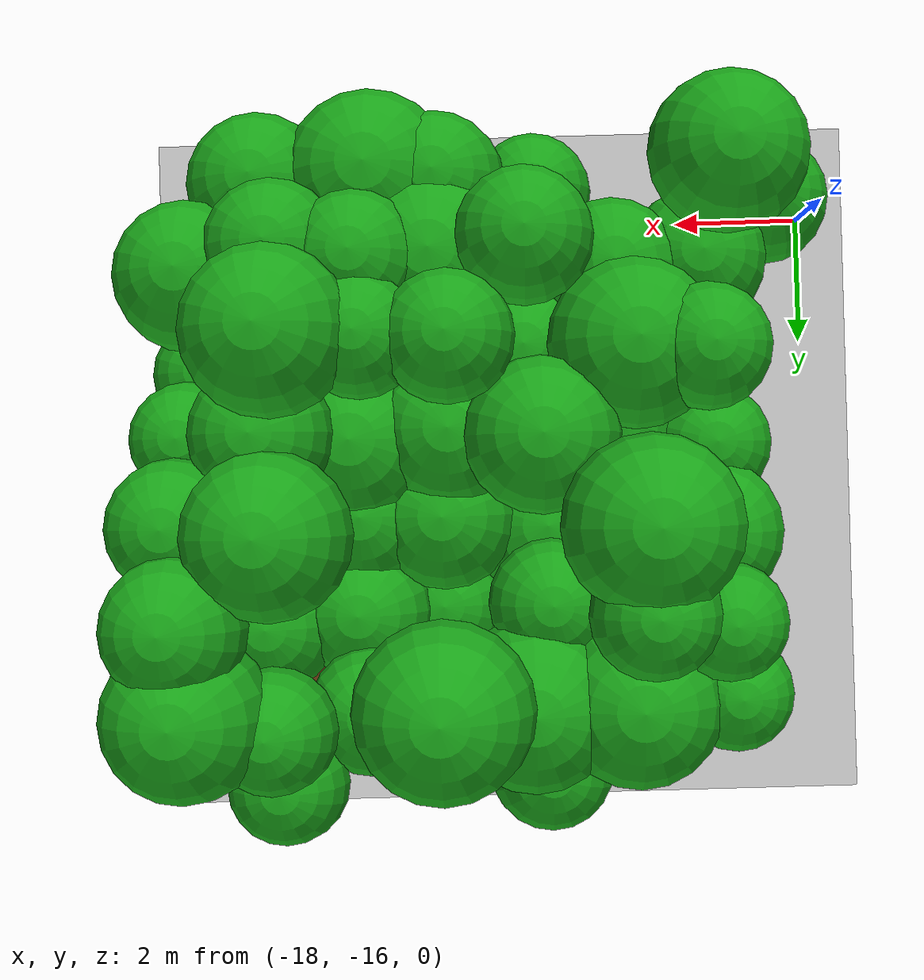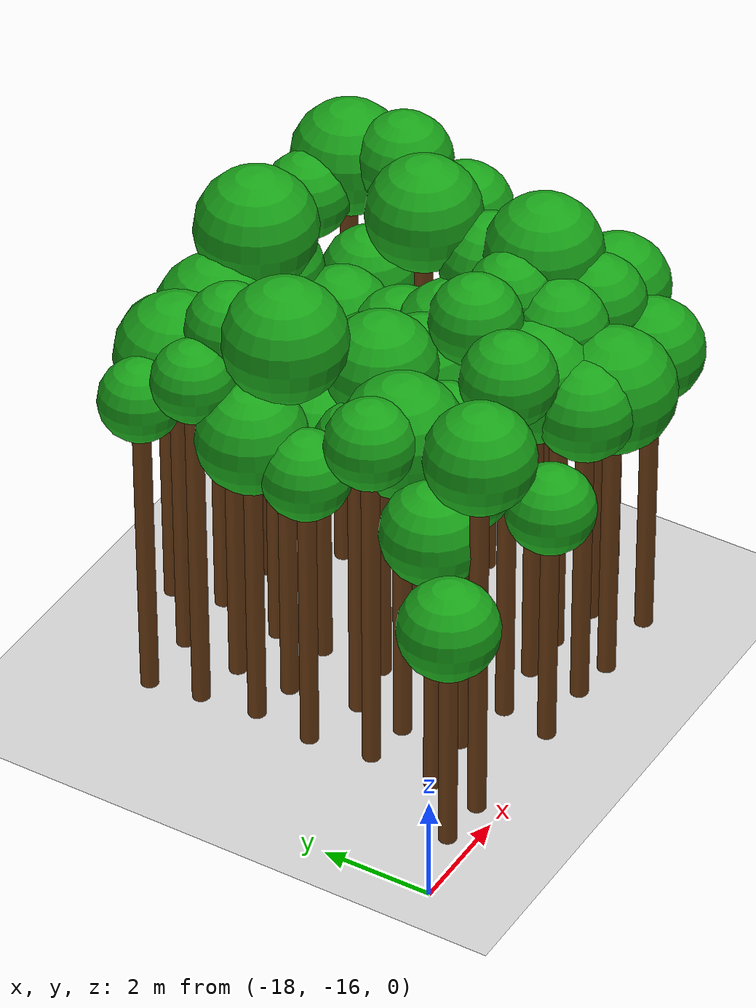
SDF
<sdf version="1.6">
 <world name="forest_world">
  <include><uri>model://sun</uri></include>
  <include><uri>model://ground_plane</uri></include>
  <model name="tree_673_trunk">
   <static>true</static>
   <pose>-16.64 -15.55 2.00 0 0 0</pose>
   <link name="link">
    <collision name="collision">
     <geometry><cylinder><radius>0.16</radius><length>4.01</length></cylinder></geometry>
    </collision>
    <visual name="visual">
     <geometry><cylinder><radius>0.16</radius><length>4.01</length></cylinder></geometry>
     <material><ambient>0.35 0.20 0.05 1</ambient><diffuse>0.45 0.25 0.08 1</diffuse></material>
    </visual>
   </link>
  </model>
  <model name="tree_673_leaf">
   <static>true</static>
   <pose>-16.64 -15.55 4.53 0 0 0</pose>
   <link name="link">
    <collision name="collision"><geometry><sphere><radius>0.87</radius></sphere></geometry></collision>
    <visual name="visual">
     <geometry><sphere><radius>0.87</radius></sphere></geometry>
     <material><ambient>0.05 0.45 0.05 1</ambient><diffuse>0.10 0.65 0.10 1</diffuse></material>
    </visual>
   </link>
  </model>
  <model name="tree_728_trunk">
   <static>true</static>
   <pose>-15.73 -15.58 3.45 0 0 0</pose>
   <link name="link">
    <collision name="collision">
     <geometry><cylinder><radius>0.16</radius><length>6.89</length></cylinder></geometry>
    </collision>
    <visual name="visual">
     <geometry><cylinder><radius>0.16</radius><length>6.89</length></cylinder></geometry>
     <material><ambient>0.35 0.20 0.05 1</ambient><diffuse>0.45 0.25 0.08 1</diffuse></material>
    </visual>
   </link>
  </model>
  <model name="tree_728_leaf">
   <static>true</static>
   <pose>-15.73 -15.58 7.46 0 0 0</pose>
   <link name="link">
    <collision name="collision"><geometry><sphere><radius>0.94</radius></sphere></geometry></collision>
    <visual name="visual">
     <geometry><sphere><radius>0.94</radius></sphere></geometry>
     <material><ambient>0.05 0.45 0.05 1</ambient><diffuse>0.10 0.65 0.10 1</diffuse></material>
    </visual>
   </link>
  </model>
  <model name="tree_729_trunk">
   <static>true</static>
   <pose>-15.59 -14.64 2.44 0 0 0</pose>
   <link name="link">
    <collision name="collision">
     <geometry><cylinder><radius>0.16</radius><length>4.89</length></cylinder></geometry>
    </collision>
    <visual name="visual">
     <geometry><cylinder><radius>0.16</radius><length>4.89</length></cylinder></geometry>
     <material><ambient>0.35 0.20 0.05 1</ambient><diffuse>0.45 0.25 0.08 1</diffuse></material>
    </visual>
   </link>
  </model>
  <model name="tree_729_leaf">
   <static>true</static>
   <pose>-15.59 -14.64 5.43 0 0 0</pose>
   <link name="link">
    <collision name="collision"><geometry><sphere><radius>0.91</radius></sphere></geometry></collision>
    <visual name="visual">
     <geometry><sphere><radius>0.91</radius></sphere></geometry>
     <material><ambient>0.05 0.45 0.05 1</ambient><diffuse>0.10 0.65 0.10 1</diffuse></material>
    </visual>
   </link>
  </model>
  <model name="tree_730_trunk">
   <static>true</static>
   <pose>-15.54 -13.41 3.14 0 0 0</pose>
   <link name="link">
    <collision name="collision">
     <geometry><cylinder><radius>0.16</radius><length>6.27</length></cylinder></geometry>
    </collision>
    <visual name="visual">
     <geometry><cylinder><radius>0.16</radius><length>6.27</length></cylinder></geometry>
     <material><ambient>0.35 0.20 0.05 1</ambient><diffuse>0.45 0.25 0.08 1</diffuse></material>
    </visual>
   </link>
  </model>
  <model name="tree_730_leaf">
   <static>true</static>
   <pose>-15.54 -13.41 6.74 0 0 0</pose>
   <link name="link">
    <collision name="collision"><geometry><sphere><radius>0.78</radius></sphere></geometry></collision>
    <visual name="visual">
     <geometry><sphere><radius>0.78</radius></sphere></geometry>
     <material><ambient>0.05 0.45 0.05 1</ambient><diffuse>0.10 0.65 0.10 1</diffuse></material>
    </visual>
   </link>
  </model>
  <model name="tree_731_trunk">
   <static>true</static>
   <pose>-15.67 -12.26 2.62 0 0 0</pose>
   <link name="link">
    <collision name="collision">
     <geometry><cylinder><radius>0.16</radius><length>5.25</length></cylinder></geometry>
    </collision>
    <visual name="visual">
     <geometry><cylinder><radius>0.16</radius><length>5.25</length></cylinder></geometry>
     <material><ambient>0.35 0.20 0.05 1</ambient><diffuse>0.45 0.25 0.08 1</diffuse></material>
    </visual>
   </link>
  </model>
  <model name="tree_731_leaf">
   <static>true</static>
   <pose>-15.67 -12.26 5.72 0 0 0</pose>
   <link name="link">
    <collision name="collision"><geometry><sphere><radius>0.78</radius></sphere></geometry></collision>
    <visual name="visual">
     <geometry><sphere><radius>0.78</radius></sphere></geometry>
     <material><ambient>0.05 0.45 0.05 1</ambient><diffuse>0.10 0.65 0.10 1</diffuse></material>
    </visual>
   </link>
  </model>
  <model name="tree_732_trunk">
   <static>true</static>
   <pose>-15.57 -11.15 2.70 0 0 0</pose>
   <link name="link">
    <collision name="collision">
     <geometry><cylinder><radius>0.16</radius><length>5.40</length></cylinder></geometry>
    </collision>
    <visual name="visual">
     <geometry><cylinder><radius>0.16</radius><length>5.40</length></cylinder></geometry>
     <material><ambient>0.35 0.20 0.05 1</ambient><diffuse>0.45 0.25 0.08 1</diffuse></material>
    </visual>
   </link>
  </model>
  <model name="tree_732_leaf">
   <static>true</static>
   <pose>-15.57 -11.15 5.98 0 0 0</pose>
   <link name="link">
    <collision name="collision"><geometry><sphere><radius>0.96</radius></sphere></geometry></collision>
    <visual name="visual">
     <geometry><sphere><radius>0.96</radius></sphere></geometry>
     <material><ambient>0.05 0.45 0.05 1</ambient><diffuse>0.10 0.65 0.10 1</diffuse></material>
    </visual>
   </link>
  </model>
  <model name="tree_733_trunk">
   <static>true</static>
   <pose>-15.69 -10.10 3.20 0 0 0</pose>
   <link name="link">
    <collision name="collision">
     <geometry><cylinder><radius>0.16</radius><length>6.39</length></cylinder></geometry>
    </collision>
    <visual name="visual">
     <geometry><cylinder><radius>0.16</radius><length>6.39</length></cylinder></geometry>
     <material><ambient>0.35 0.20 0.05 1</ambient><diffuse>0.45 0.25 0.08 1</diffuse></material>
    </visual>
   </link>
  </model>
  <model name="tree_733_leaf">
   <static>true</static>
   <pose>-15.69 -10.10 6.82 0 0 0</pose>
   <link name="link">
    <collision name="collision"><geometry><sphere><radius>0.72</radius></sphere></geometry></collision>
    <visual name="visual">
     <geometry><sphere><radius>0.72</radius></sphere></geometry>
     <material><ambient>0.05 0.45 0.05 1</ambient><diffuse>0.10 0.65 0.10 1</diffuse></material>
    </visual>
   </link>
  </model>
  <model name="tree_734_trunk">
   <static>true</static>
   <pose>-15.84 -9.15 2.86 0 0 0</pose>
   <link name="link">
    <collision name="collision">
     <geometry><cylinder><radius>0.16</radius><length>5.71</length></cylinder></geometry>
    </collision>
    <visual name="visual">
     <geometry><cylinder><radius>0.16</radius><length>5.71</length></cylinder></geometry>
     <material><ambient>0.35 0.20 0.05 1</ambient><diffuse>0.45 0.25 0.08 1</diffuse></material>
    </visual>
   </link>
  </model>
  <model name="tree_734_leaf">
   <static>true</static>
   <pose>-15.84 -9.15 6.15 0 0 0</pose>
   <link name="link">
    <collision name="collision"><geometry><sphere><radius>0.73</radius></sphere></geometry></collision>
    <visual name="visual">
     <geometry><sphere><radius>0.73</radius></sphere></geometry>
     <material><ambient>0.05 0.45 0.05 1</ambient><diffuse>0.10 0.65 0.10 1</diffuse></material>
    </visual>
   </link>
  </model>
  <model name="tree_784_trunk">
   <static>true</static>
   <pose>-14.47 -14.51 2.58 0 0 0</pose>
   <link name="link">
    <collision name="collision">
     <geometry><cylinder><radius>0.16</radius><length>5.16</length></cylinder></geometry>
    </collision>
    <visual name="visual">
     <geometry><cylinder><radius>0.16</radius><length>5.16</length></cylinder></geometry>
     <material><ambient>0.35 0.20 0.05 1</ambient><diffuse>0.45 0.25 0.08 1</diffuse></material>
    </visual>
   </link>
  </model>
  <model name="tree_784_leaf">
   <static>true</static>
   <pose>-14.47 -14.51 5.71 0 0 0</pose>
   <link name="link">
    <collision name="collision"><geometry><sphere><radius>0.90</radius></sphere></geometry></collision>
    <visual name="visual">
     <geometry><sphere><radius>0.90</radius></sphere></geometry>
     <material><ambient>0.05 0.45 0.05 1</ambient><diffuse>0.10 0.65 0.10 1</diffuse></material>
    </visual>
   </link>
  </model>
  <model name="tree_785_trunk">
   <static>true</static>
   <pose>-14.68 -13.50 2.87 0 0 0</pose>
   <link name="link">
    <collision name="collision">
     <geometry><cylinder><radius>0.16</radius><length>5.73</length></cylinder></geometry>
    </collision>
    <visual name="visual">
     <geometry><cylinder><radius>0.16</radius><length>5.73</length></cylinder></geometry>
     <material><ambient>0.35 0.20 0.05 1</ambient><diffuse>0.45 0.25 0.08 1</diffuse></material>
    </visual>
   </link>
  </model>
  <model name="tree_785_leaf">
   <static>true</static>
   <pose>-14.68 -13.50 6.38 0 0 0</pose>
   <link name="link">
    <collision name="collision"><geometry><sphere><radius>1.07</radius></sphere></geometry></collision>
    <visual name="visual">
     <geometry><sphere><radius>1.07</radius></sphere></geometry>
     <material><ambient>0.05 0.45 0.05 1</ambient><diffuse>0.10 0.65 0.10 1</diffuse></material>
    </visual>
   </link>
  </model>
  <model name="tree_786_trunk">
   <static>true</static>
   <pose>-14.54 -12.54 2.64 0 0 0</pose>
   <link name="link">
    <collision name="collision">
     <geometry><cylinder><radius>0.16</radius><length>5.28</length></cylinder></geometry>
    </collision>
    <visual name="visual">
     <geometry><cylinder><radius>0.16</radius><length>5.28</length></cylinder></geometry>
     <material><ambient>0.35 0.20 0.05 1</ambient><diffuse>0.45 0.25 0.08 1</diffuse></material>
    </visual>
   </link>
  </model>
  <model name="tree_786_leaf">
   <static>true</static>
   <pose>-14.54 -12.54 5.72 0 0 0</pose>
   <link name="link">
    <collision name="collision"><geometry><sphere><radius>0.73</radius></sphere></geometry></collision>
    <visual name="visual">
     <geometry><sphere><radius>0.73</radius></sphere></geometry>
     <material><ambient>0.05 0.45 0.05 1</ambient><diffuse>0.10 0.65 0.10 1</diffuse></material>
    </visual>
   </link>
  </model>
  <model name="tree_787_trunk">
   <static>true</static>
   <pose>-14.75 -11.30 3.44 0 0 0</pose>
   <link name="link">
    <collision name="collision">
     <geometry><cylinder><radius>0.16</radius><length>6.88</length></cylinder></geometry>
    </collision>
    <visual name="visual">
     <geometry><cylinder><radius>0.16</radius><length>6.88</length></cylinder></geometry>
     <material><ambient>0.35 0.20 0.05 1</ambient><diffuse>0.45 0.25 0.08 1</diffuse></material>
    </visual>
   </link>
  </model>
  <model name="tree_787_leaf">
   <static>true</static>
   <pose>-14.75 -11.30 7.52 0 0 0</pose>
   <link name="link">
    <collision name="collision"><geometry><sphere><radius>1.08</radius></sphere></geometry></collision>
    <visual name="visual">
     <geometry><sphere><radius>1.08</radius></sphere></geometry>
     <material><ambient>0.05 0.45 0.05 1</ambient><diffuse>0.10 0.65 0.10 1</diffuse></material>
    </visual>
   </link>
  </model>
  <model name="tree_788_trunk">
   <static>true</static>
   <pose>-14.76 -10.26 3.45 0 0 0</pose>
   <link name="link">
    <collision name="collision">
     <geometry><cylinder><radius>0.16</radius><length>6.90</length></cylinder></geometry>
    </collision>
    <visual name="visual">
     <geometry><cylinder><radius>0.16</radius><length>6.90</length></cylinder></geometry>
     <material><ambient>0.35 0.20 0.05 1</ambient><diffuse>0.45 0.25 0.08 1</diffuse></material>
    </visual>
   </link>
  </model>
  <model name="tree_788_leaf">
   <static>true</static>
   <pose>-14.76 -10.26 7.37 0 0 0</pose>
   <link name="link">
    <collision name="collision"><geometry><sphere><radius>0.78</radius></sphere></geometry></collision>
    <visual name="visual">
     <geometry><sphere><radius>0.78</radius></sphere></geometry>
     <material><ambient>0.05 0.45 0.05 1</ambient><diffuse>0.10 0.65 0.10 1</diffuse></material>
    </visual>
   </link>
  </model>
  <model name="tree_789_trunk">
   <static>true</static>
   <pose>-14.62 -9.10 2.81 0 0 0</pose>
   <link name="link">
    <collision name="collision">
     <geometry><cylinder><radius>0.16</radius><length>5.61</length></cylinder></geometry>
    </collision>
    <visual name="visual">
     <geometry><cylinder><radius>0.16</radius><length>5.61</length></cylinder></geometry>
     <material><ambient>0.35 0.20 0.05 1</ambient><diffuse>0.45 0.25 0.08 1</diffuse></material>
    </visual>
   </link>
  </model>
  <model name="tree_789_leaf">
   <static>true</static>
   <pose>-14.62 -9.10 6.27 0 0 0</pose>
   <link name="link">
    <collision name="collision"><geometry><sphere><radius>1.09</radius></sphere></geometry></collision>
    <visual name="visual">
     <geometry><sphere><radius>1.09</radius></sphere></geometry>
     <material><ambient>0.05 0.45 0.05 1</ambient><diffuse>0.10 0.65 0.10 1</diffuse></material>
    </visual>
   </link>
  </model>
  <model name="tree_838_trunk">
   <static>true</static>
   <pose>-13.51 -15.65 2.22 0 0 0</pose>
   <link name="link">
    <collision name="collision">
     <geometry><cylinder><radius>0.16</radius><length>4.44</length></cylinder></geometry>
    </collision>
    <visual name="visual">
     <geometry><cylinder><radius>0.16</radius><length>4.44</length></cylinder></geometry>
     <material><ambient>0.35 0.20 0.05 1</ambient><diffuse>0.45 0.25 0.08 1</diffuse></material>
    </visual>
   </link>
  </model>
  <model name="tree_838_leaf">
   <static>true</static>
   <pose>-13.51 -15.65 4.91 0 0 0</pose>
   <link name="link">
    <collision name="collision"><geometry><sphere><radius>0.78</radius></sphere></geometry></collision>
    <visual name="visual">
     <geometry><sphere><radius>0.78</radius></sphere></geometry>
     <material><ambient>0.05 0.45 0.05 1</ambient><diffuse>0.10 0.65 0.10 1</diffuse></material>
    </visual>
   </link>
  </model>
  <model name="tree_839_trunk">
   <static>true</static>
   <pose>-13.35 -14.73 3.32 0 0 0</pose>
   <link name="link">
    <collision name="collision">
     <geometry><cylinder><radius>0.16</radius><length>6.64</length></cylinder></geometry>
    </collision>
    <visual name="visual">
     <geometry><cylinder><radius>0.16</radius><length>6.64</length></cylinder></geometry>
     <material><ambient>0.35 0.20 0.05 1</ambient><diffuse>0.45 0.25 0.08 1</diffuse></material>
    </visual>
   </link>
  </model>
  <model name="tree_839_leaf">
   <static>true</static>
   <pose>-13.35 -14.73 7.13 0 0 0</pose>
   <link name="link">
    <collision name="collision"><geometry><sphere><radius>0.83</radius></sphere></geometry></collision>
    <visual name="visual">
     <geometry><sphere><radius>0.83</radius></sphere></geometry>
     <material><ambient>0.05 0.45 0.05 1</ambient><diffuse>0.10 0.65 0.10 1</diffuse></material>
    </visual>
   </link>
  </model>
  <model name="tree_840_trunk">
   <static>true</static>
   <pose>-13.33 -13.53 2.53 0 0 0</pose>
   <link name="link">
    <collision name="collision">
     <geometry><cylinder><radius>0.16</radius><length>5.07</length></cylinder></geometry>
    </collision>
    <visual name="visual">
     <geometry><cylinder><radius>0.16</radius><length>5.07</length></cylinder></geometry>
     <material><ambient>0.35 0.20 0.05 1</ambient><diffuse>0.45 0.25 0.08 1</diffuse></material>
    </visual>
   </link>
  </model>
  <model name="tree_840_leaf">
   <static>true</static>
   <pose>-13.33 -13.53 5.57 0 0 0</pose>
   <link name="link">
    <collision name="collision"><geometry><sphere><radius>0.84</radius></sphere></geometry></collision>
    <visual name="visual">
     <geometry><sphere><radius>0.84</radius></sphere></geometry>
     <material><ambient>0.05 0.45 0.05 1</ambient><diffuse>0.10 0.65 0.10 1</diffuse></material>
    </visual>
   </link>
  </model>
  <model name="tree_841_trunk">
   <static>true</static>
   <pose>-13.52 -12.40 3.01 0 0 0</pose>
   <link name="link">
    <collision name="collision">
     <geometry><cylinder><radius>0.16</radius><length>6.01</length></cylinder></geometry>
    </collision>
    <visual name="visual">
     <geometry><cylinder><radius>0.16</radius><length>6.01</length></cylinder></geometry>
     <material><ambient>0.35 0.20 0.05 1</ambient><diffuse>0.45 0.25 0.08 1</diffuse></material>
    </visual>
   </link>
  </model>
  <model name="tree_841_leaf">
   <static>true</static>
   <pose>-13.52 -12.40 6.59 0 0 0</pose>
   <link name="link">
    <collision name="collision"><geometry><sphere><radius>0.97</radius></sphere></geometry></collision>
    <visual name="visual">
     <geometry><sphere><radius>0.97</radius></sphere></geometry>
     <material><ambient>0.05 0.45 0.05 1</ambient><diffuse>0.10 0.65 0.10 1</diffuse></material>
    </visual>
   </link>
  </model>
  <model name="tree_842_trunk">
   <static>true</static>
   <pose>-13.59 -11.26 2.08 0 0 0</pose>
   <link name="link">
    <collision name="collision">
     <geometry><cylinder><radius>0.16</radius><length>4.16</length></cylinder></geometry>
    </collision>
    <visual name="visual">
     <geometry><cylinder><radius>0.16</radius><length>4.16</length></cylinder></geometry>
     <material><ambient>0.35 0.20 0.05 1</ambient><diffuse>0.45 0.25 0.08 1</diffuse></material>
    </visual>
   </link>
  </model>
  <model name="tree_842_leaf">
   <static>true</static>
   <pose>-13.59 -11.26 4.79 0 0 0</pose>
   <link name="link">
    <collision name="collision"><geometry><sphere><radius>1.06</radius></sphere></geometry></collision>
    <visual name="visual">
     <geometry><sphere><radius>1.06</radius></sphere></geometry>
     <material><ambient>0.05 0.45 0.05 1</ambient><diffuse>0.10 0.65 0.10 1</diffuse></material>
    </visual>
   </link>
  </model>
  <model name="tree_843_trunk">
   <static>true</static>
   <pose>-13.60 -10.34 2.86 0 0 0</pose>
   <link name="link">
    <collision name="collision">
     <geometry><cylinder><radius>0.16</radius><length>5.72</length></cylinder></geometry>
    </collision>
    <visual name="visual">
     <geometry><cylinder><radius>0.16</radius><length>5.72</length></cylinder></geometry>
     <material><ambient>0.35 0.20 0.05 1</ambient><diffuse>0.45 0.25 0.08 1</diffuse></material>
    </visual>
   </link>
  </model>
  <model name="tree_843_leaf">
   <static>true</static>
   <pose>-13.60 -10.34 6.20 0 0 0</pose>
   <link name="link">
    <collision name="collision"><geometry><sphere><radius>0.79</radius></sphere></geometry></collision>
    <visual name="visual">
     <geometry><sphere><radius>0.79</radius></sphere></geometry>
     <material><ambient>0.05 0.45 0.05 1</ambient><diffuse>0.10 0.65 0.10 1</diffuse></material>
    </visual>
   </link>
  </model>
  <model name="tree_844_trunk">
   <static>true</static>
   <pose>-13.35 -9.08 2.80 0 0 0</pose>
   <link name="link">
    <collision name="collision">
     <geometry><cylinder><radius>0.16</radius><length>5.61</length></cylinder></geometry>
    </collision>
    <visual name="visual">
     <geometry><cylinder><radius>0.16</radius><length>5.61</length></cylinder></geometry>
     <material><ambient>0.35 0.20 0.05 1</ambient><diffuse>0.45 0.25 0.08 1</diffuse></material>
    </visual>
   </link>
  </model>
  <model name="tree_844_leaf">
   <static>true</static>
   <pose>-13.35 -9.08 6.26 0 0 0</pose>
   <link name="link">
    <collision name="collision"><geometry><sphere><radius>1.09</radius></sphere></geometry></collision>
    <visual name="visual">
     <geometry><sphere><radius>1.09</radius></sphere></geometry>
     <material><ambient>0.05 0.45 0.05 1</ambient><diffuse>0.10 0.65 0.10 1</diffuse></material>
    </visual>
   </link>
  </model>
  <model name="tree_845_trunk">
   <static>true</static>
   <pose>-13.56 -8.17 2.51 0 0 0</pose>
   <link name="link">
    <collision name="collision">
     <geometry><cylinder><radius>0.16</radius><length>5.03</length></cylinder></geometry>
    </collision>
    <visual name="visual">
     <geometry><cylinder><radius>0.16</radius><length>5.03</length></cylinder></geometry>
     <material><ambient>0.35 0.20 0.05 1</ambient><diffuse>0.45 0.25 0.08 1</diffuse></material>
    </visual>
   </link>
  </model>
  <model name="tree_845_leaf">
   <static>true</static>
   <pose>-13.56 -8.17 5.51 0 0 0</pose>
   <link name="link">
    <collision name="collision"><geometry><sphere><radius>0.81</radius></sphere></geometry></collision>
    <visual name="visual">
     <geometry><sphere><radius>0.81</radius></sphere></geometry>
     <material><ambient>0.05 0.45 0.05 1</ambient><diffuse>0.10 0.65 0.10 1</diffuse></material>
    </visual>
   </link>
  </model>
  <model name="tree_893_trunk">
   <static>true</static>
   <pose>-12.28 -15.59 2.80 0 0 0</pose>
   <link name="link">
    <collision name="collision">
     <geometry><cylinder><radius>0.16</radius><length>5.59</length></cylinder></geometry>
    </collision>
    <visual name="visual">
     <geometry><cylinder><radius>0.16</radius><length>5.59</length></cylinder></geometry>
     <material><ambient>0.35 0.20 0.05 1</ambient><diffuse>0.45 0.25 0.08 1</diffuse></material>
    </visual>
   </link>
  </model>
  <model name="tree_893_leaf">
   <static>true</static>
   <pose>-12.28 -15.59 6.12 0 0 0</pose>
   <link name="link">
    <collision name="collision"><geometry><sphere><radius>0.87</radius></sphere></geometry></collision>
    <visual name="visual">
     <geometry><sphere><radius>0.87</radius></sphere></geometry>
     <material><ambient>0.05 0.45 0.05 1</ambient><diffuse>0.10 0.65 0.10 1</diffuse></material>
    </visual>
   </link>
  </model>
  <model name="tree_894_trunk">
   <static>true</static>
   <pose>-12.23 -14.60 2.83 0 0 0</pose>
   <link name="link">
    <collision name="collision">
     <geometry><cylinder><radius>0.16</radius><length>5.67</length></cylinder></geometry>
    </collision>
    <visual name="visual">
     <geometry><cylinder><radius>0.16</radius><length>5.67</length></cylinder></geometry>
     <material><ambient>0.35 0.20 0.05 1</ambient><diffuse>0.45 0.25 0.08 1</diffuse></material>
    </visual>
   </link>
  </model>
  <model name="tree_894_leaf">
   <static>true</static>
   <pose>-12.23 -14.60 6.30 0 0 0</pose>
   <link name="link">
    <collision name="collision"><geometry><sphere><radius>1.05</radius></sphere></geometry></collision>
    <visual name="visual">
     <geometry><sphere><radius>1.05</radius></sphere></geometry>
     <material><ambient>0.05 0.45 0.05 1</ambient><diffuse>0.10 0.65 0.10 1</diffuse></material>
    </visual>
   </link>
  </model>
  <model name="tree_895_trunk">
   <static>true</static>
   <pose>-12.42 -13.56 3.41 0 0 0</pose>
   <link name="link">
    <collision name="collision">
     <geometry><cylinder><radius>0.16</radius><length>6.81</length></cylinder></geometry>
    </collision>
    <visual name="visual">
     <geometry><cylinder><radius>0.16</radius><length>6.81</length></cylinder></geometry>
     <material><ambient>0.35 0.20 0.05 1</ambient><diffuse>0.45 0.25 0.08 1</diffuse></material>
    </visual>
   </link>
  </model>
  <model name="tree_895_leaf">
   <static>true</static>
   <pose>-12.42 -13.56 7.29 0 0 0</pose>
   <link name="link">
    <collision name="collision"><geometry><sphere><radius>0.80</radius></sphere></geometry></collision>
    <visual name="visual">
     <geometry><sphere><radius>0.80</radius></sphere></geometry>
     <material><ambient>0.05 0.45 0.05 1</ambient><diffuse>0.10 0.65 0.10 1</diffuse></material>
    </visual>
   </link>
  </model>
  <model name="tree_896_trunk">
   <static>true</static>
   <pose>-12.38 -12.51 2.61 0 0 0</pose>
   <link name="link">
    <collision name="collision">
     <geometry><cylinder><radius>0.16</radius><length>5.22</length></cylinder></geometry>
    </collision>
    <visual name="visual">
     <geometry><cylinder><radius>0.16</radius><length>5.22</length></cylinder></geometry>
     <material><ambient>0.35 0.20 0.05 1</ambient><diffuse>0.45 0.25 0.08 1</diffuse></material>
    </visual>
   </link>
  </model>
  <model name="tree_896_leaf">
   <static>true</static>
   <pose>-12.38 -12.51 5.81 0 0 0</pose>
   <link name="link">
    <collision name="collision"><geometry><sphere><radius>0.97</radius></sphere></geometry></collision>
    <visual name="visual">
     <geometry><sphere><radius>0.97</radius></sphere></geometry>
     <material><ambient>0.05 0.45 0.05 1</ambient><diffuse>0.10 0.65 0.10 1</diffuse></material>
    </visual>
   </link>
  </model>
  <model name="tree_897_trunk">
   <static>true</static>
   <pose>-12.26 -11.42 2.38 0 0 0</pose>
   <link name="link">
    <collision name="collision">
     <geometry><cylinder><radius>0.16</radius><length>4.75</length></cylinder></geometry>
    </collision>
    <visual name="visual">
     <geometry><cylinder><radius>0.16</radius><length>4.75</length></cylinder></geometry>
     <material><ambient>0.35 0.20 0.05 1</ambient><diffuse>0.45 0.25 0.08 1</diffuse></material>
    </visual>
   </link>
  </model>
  <model name="tree_897_leaf">
   <static>true</static>
   <pose>-12.26 -11.42 5.33 0 0 0</pose>
   <link name="link">
    <collision name="collision"><geometry><sphere><radius>0.97</radius></sphere></geometry></collision>
    <visual name="visual">
     <geometry><sphere><radius>0.97</radius></sphere></geometry>
     <material><ambient>0.05 0.45 0.05 1</ambient><diffuse>0.10 0.65 0.10 1</diffuse></material>
    </visual>
   </link>
  </model>
  <model name="tree_898_trunk">
   <static>true</static>
   <pose>-12.23 -10.23 2.05 0 0 0</pose>
   <link name="link">
    <collision name="collision">
     <geometry><cylinder><radius>0.16</radius><length>4.10</length></cylinder></geometry>
    </collision>
    <visual name="visual">
     <geometry><cylinder><radius>0.16</radius><length>4.10</length></cylinder></geometry>
     <material><ambient>0.35 0.20 0.05 1</ambient><diffuse>0.45 0.25 0.08 1</diffuse></material>
    </visual>
   </link>
  </model>
  <model name="tree_898_leaf">
   <static>true</static>
   <pose>-12.23 -10.23 4.61 0 0 0</pose>
   <link name="link">
    <collision name="collision"><geometry><sphere><radius>0.84</radius></sphere></geometry></collision>
    <visual name="visual">
     <geometry><sphere><radius>0.84</radius></sphere></geometry>
     <material><ambient>0.05 0.45 0.05 1</ambient><diffuse>0.10 0.65 0.10 1</diffuse></material>
    </visual>
   </link>
  </model>
  <model name="tree_899_trunk">
   <static>true</static>
   <pose>-12.28 -9.21 3.40 0 0 0</pose>
   <link name="link">
    <collision name="collision">
     <geometry><cylinder><radius>0.16</radius><length>6.80</length></cylinder></geometry>
    </collision>
    <visual name="visual">
     <geometry><cylinder><radius>0.16</radius><length>6.80</length></cylinder></geometry>
     <material><ambient>0.35 0.20 0.05 1</ambient><diffuse>0.45 0.25 0.08 1</diffuse></material>
    </visual>
   </link>
  </model>
  <model name="tree_899_leaf">
   <static>true</static>
   <pose>-12.28 -9.21 7.45 0 0 0</pose>
   <link name="link">
    <collision name="collision"><geometry><sphere><radius>1.08</radius></sphere></geometry></collision>
    <visual name="visual">
     <geometry><sphere><radius>1.08</radius></sphere></geometry>
     <material><ambient>0.05 0.45 0.05 1</ambient><diffuse>0.10 0.65 0.10 1</diffuse></material>
    </visual>
   </link>
  </model>
  <model name="tree_948_trunk">
   <static>true</static>
   <pose>-11.48 -15.67 2.70 0 0 0</pose>
   <link name="link">
    <collision name="collision">
     <geometry><cylinder><radius>0.16</radius><length>5.39</length></cylinder></geometry>
    </collision>
    <visual name="visual">
     <geometry><cylinder><radius>0.16</radius><length>5.39</length></cylinder></geometry>
     <material><ambient>0.35 0.20 0.05 1</ambient><diffuse>0.45 0.25 0.08 1</diffuse></material>
    </visual>
   </link>
  </model>
  <model name="tree_948_leaf">
   <static>true</static>
   <pose>-11.48 -15.67 6.05 0 0 0</pose>
   <link name="link">
    <collision name="collision"><geometry><sphere><radius>1.09</radius></sphere></geometry></collision>
    <visual name="visual">
     <geometry><sphere><radius>1.09</radius></sphere></geometry>
     <material><ambient>0.05 0.45 0.05 1</ambient><diffuse>0.10 0.65 0.10 1</diffuse></material>
    </visual>
   </link>
  </model>
  <model name="tree_949_trunk">
   <static>true</static>
   <pose>-11.33 -14.56 3.16 0 0 0</pose>
   <link name="link">
    <collision name="collision">
     <geometry><cylinder><radius>0.16</radius><length>6.32</length></cylinder></geometry>
    </collision>
    <visual name="visual">
     <geometry><cylinder><radius>0.16</radius><length>6.32</length></cylinder></geometry>
     <material><ambient>0.35 0.20 0.05 1</ambient><diffuse>0.45 0.25 0.08 1</diffuse></material>
    </visual>
   </link>
  </model>
  <model name="tree_949_leaf">
   <static>true</static>
   <pose>-11.33 -14.56 6.82 0 0 0</pose>
   <link name="link">
    <collision name="collision"><geometry><sphere><radius>0.83</radius></sphere></geometry></collision>
    <visual name="visual">
     <geometry><sphere><radius>0.83</radius></sphere></geometry>
     <material><ambient>0.05 0.45 0.05 1</ambient><diffuse>0.10 0.65 0.10 1</diffuse></material>
    </visual>
   </link>
  </model>
  <model name="tree_950_trunk">
   <static>true</static>
   <pose>-11.38 -13.61 3.35 0 0 0</pose>
   <link name="link">
    <collision name="collision">
     <geometry><cylinder><radius>0.16</radius><length>6.70</length></cylinder></geometry>
    </collision>
    <visual name="visual">
     <geometry><cylinder><radius>0.16</radius><length>6.70</length></cylinder></geometry>
     <material><ambient>0.35 0.20 0.05 1</ambient><diffuse>0.45 0.25 0.08 1</diffuse></material>
    </visual>
   </link>
  </model>
  <model name="tree_950_leaf">
   <static>true</static>
   <pose>-11.38 -13.61 7.15 0 0 0</pose>
   <link name="link">
    <collision name="collision"><geometry><sphere><radius>0.76</radius></sphere></geometry></collision>
    <visual name="visual">
     <geometry><sphere><radius>0.76</radius></sphere></geometry>
     <material><ambient>0.05 0.45 0.05 1</ambient><diffuse>0.10 0.65 0.10 1</diffuse></material>
    </visual>
   </link>
  </model>
  <model name="tree_951_trunk">
   <static>true</static>
   <pose>-11.18 -12.40 2.50 0 0 0</pose>
   <link name="link">
    <collision name="collision">
     <geometry><cylinder><radius>0.16</radius><length>5.00</length></cylinder></geometry>
    </collision>
    <visual name="visual">
     <geometry><cylinder><radius>0.16</radius><length>5.00</length></cylinder></geometry>
     <material><ambient>0.35 0.20 0.05 1</ambient><diffuse>0.45 0.25 0.08 1</diffuse></material>
    </visual>
   </link>
  </model>
  <model name="tree_951_leaf">
   <static>true</static>
   <pose>-11.18 -12.40 5.63 0 0 0</pose>
   <link name="link">
    <collision name="collision"><geometry><sphere><radius>1.05</radius></sphere></geometry></collision>
    <visual name="visual">
     <geometry><sphere><radius>1.05</radius></sphere></geometry>
     <material><ambient>0.05 0.45 0.05 1</ambient><diffuse>0.10 0.65 0.10 1</diffuse></material>
    </visual>
   </link>
  </model>
  <model name="tree_952_trunk">
   <static>true</static>
   <pose>-11.24 -11.44 2.37 0 0 0</pose>
   <link name="link">
    <collision name="collision">
     <geometry><cylinder><radius>0.16</radius><length>4.74</length></cylinder></geometry>
    </collision>
    <visual name="visual">
     <geometry><cylinder><radius>0.16</radius><length>4.74</length></cylinder></geometry>
     <material><ambient>0.35 0.20 0.05 1</ambient><diffuse>0.45 0.25 0.08 1</diffuse></material>
    </visual>
   </link>
  </model>
  <model name="tree_952_leaf">
   <static>true</static>
   <pose>-11.24 -11.44 5.29 0 0 0</pose>
   <link name="link">
    <collision name="collision"><geometry><sphere><radius>0.93</radius></sphere></geometry></collision>
    <visual name="visual">
     <geometry><sphere><radius>0.93</radius></sphere></geometry>
     <material><ambient>0.05 0.45 0.05 1</ambient><diffuse>0.10 0.65 0.10 1</diffuse></material>
    </visual>
   </link>
  </model>
  <model name="tree_953_trunk">
   <static>true</static>
   <pose>-11.18 -10.20 2.36 0 0 0</pose>
   <link name="link">
    <collision name="collision">
     <geometry><cylinder><radius>0.16</radius><length>4.72</length></cylinder></geometry>
    </collision>
    <visual name="visual">
     <geometry><cylinder><radius>0.16</radius><length>4.72</length></cylinder></geometry>
     <material><ambient>0.35 0.20 0.05 1</ambient><diffuse>0.45 0.25 0.08 1</diffuse></material>
    </visual>
   </link>
  </model>
  <model name="tree_953_leaf">
   <static>true</static>
   <pose>-11.18 -10.20 5.26 0 0 0</pose>
   <link name="link">
    <collision name="collision"><geometry><sphere><radius>0.89</radius></sphere></geometry></collision>
    <visual name="visual">
     <geometry><sphere><radius>0.89</radius></sphere></geometry>
     <material><ambient>0.05 0.45 0.05 1</ambient><diffuse>0.10 0.65 0.10 1</diffuse></material>
    </visual>
   </link>
  </model>
  <model name="tree_954_trunk">
   <static>true</static>
   <pose>-11.33 -9.01 2.71 0 0 0</pose>
   <link name="link">
    <collision name="collision">
     <geometry><cylinder><radius>0.16</radius><length>5.42</length></cylinder></geometry>
    </collision>
    <visual name="visual">
     <geometry><cylinder><radius>0.16</radius><length>5.42</length></cylinder></geometry>
     <material><ambient>0.35 0.20 0.05 1</ambient><diffuse>0.45 0.25 0.08 1</diffuse></material>
    </visual>
   </link>
  </model>
  <model name="tree_954_leaf">
   <static>true</static>
   <pose>-11.33 -9.01 5.92 0 0 0</pose>
   <link name="link">
    <collision name="collision"><geometry><sphere><radius>0.82</radius></sphere></geometry></collision>
    <visual name="visual">
     <geometry><sphere><radius>0.82</radius></sphere></geometry>
     <material><ambient>0.05 0.45 0.05 1</ambient><diffuse>0.10 0.65 0.10 1</diffuse></material>
    </visual>
   </link>
  </model>
  <model name="tree_1003_trunk">
   <static>true</static>
   <pose>-10.08 -15.62 2.69 0 0 0</pose>
   <link name="link">
    <collision name="collision">
     <geometry><cylinder><radius>0.16</radius><length>5.39</length></cylinder></geometry>
    </collision>
    <visual name="visual">
     <geometry><cylinder><radius>0.16</radius><length>5.39</length></cylinder></geometry>
     <material><ambient>0.35 0.20 0.05 1</ambient><diffuse>0.45 0.25 0.08 1</diffuse></material>
    </visual>
   </link>
  </model>
  <model name="tree_1003_leaf">
   <static>true</static>
   <pose>-10.08 -15.62 5.94 0 0 0</pose>
   <link name="link">
    <collision name="collision"><geometry><sphere><radius>0.92</radius></sphere></geometry></collision>
    <visual name="visual">
     <geometry><sphere><radius>0.92</radius></sphere></geometry>
     <material><ambient>0.05 0.45 0.05 1</ambient><diffuse>0.10 0.65 0.10 1</diffuse></material>
    </visual>
   </link>
  </model>
  <model name="tree_1004_trunk">
   <static>true</static>
   <pose>-10.35 -14.71 3.12 0 0 0</pose>
   <link name="link">
    <collision name="collision">
     <geometry><cylinder><radius>0.16</radius><length>6.25</length></cylinder></geometry>
    </collision>
    <visual name="visual">
     <geometry><cylinder><radius>0.16</radius><length>6.25</length></cylinder></geometry>
     <material><ambient>0.35 0.20 0.05 1</ambient><diffuse>0.45 0.25 0.08 1</diffuse></material>
    </visual>
   </link>
  </model>
  <model name="tree_1004_leaf">
   <static>true</static>
   <pose>-10.35 -14.71 6.76 0 0 0</pose>
   <link name="link">
    <collision name="collision"><geometry><sphere><radius>0.85</radius></sphere></geometry></collision>
    <visual name="visual">
     <geometry><sphere><radius>0.85</radius></sphere></geometry>
     <material><ambient>0.05 0.45 0.05 1</ambient><diffuse>0.10 0.65 0.10 1</diffuse></material>
    </visual>
   </link>
  </model>
  <model name="tree_1005_trunk">
   <static>true</static>
   <pose>-10.35 -13.67 3.39 0 0 0</pose>
   <link name="link">
    <collision name="collision">
     <geometry><cylinder><radius>0.16</radius><length>6.79</length></cylinder></geometry>
    </collision>
    <visual name="visual">
     <geometry><cylinder><radius>0.16</radius><length>6.79</length></cylinder></geometry>
     <material><ambient>0.35 0.20 0.05 1</ambient><diffuse>0.45 0.25 0.08 1</diffuse></material>
    </visual>
   </link>
  </model>
  <model name="tree_1005_leaf">
   <static>true</static>
   <pose>-10.35 -13.67 7.41 0 0 0</pose>
   <link name="link">
    <collision name="collision"><geometry><sphere><radius>1.03</radius></sphere></geometry></collision>
    <visual name="visual">
     <geometry><sphere><radius>1.03</radius></sphere></geometry>
     <material><ambient>0.05 0.45 0.05 1</ambient><diffuse>0.10 0.65 0.10 1</diffuse></material>
    </visual>
   </link>
  </model>
  <model name="tree_1006_trunk">
   <static>true</static>
   <pose>-10.11 -12.49 3.02 0 0 0</pose>
   <link name="link">
    <collision name="collision">
     <geometry><cylinder><radius>0.16</radius><length>6.05</length></cylinder></geometry>
    </collision>
    <visual name="visual">
     <geometry><cylinder><radius>0.16</radius><length>6.05</length></cylinder></geometry>
     <material><ambient>0.35 0.20 0.05 1</ambient><diffuse>0.45 0.25 0.08 1</diffuse></material>
    </visual>
   </link>
  </model>
  <model name="tree_1006_leaf">
   <static>true</static>
   <pose>-10.11 -12.49 6.58 0 0 0</pose>
   <link name="link">
    <collision name="collision"><geometry><sphere><radius>0.89</radius></sphere></geometry></collision>
    <visual name="visual">
     <geometry><sphere><radius>0.89</radius></sphere></geometry>
     <material><ambient>0.05 0.45 0.05 1</ambient><diffuse>0.10 0.65 0.10 1</diffuse></material>
    </visual>
   </link>
  </model>
  <model name="tree_1007_trunk">
   <static>true</static>
   <pose>-10.26 -11.28 3.32 0 0 0</pose>
   <link name="link">
    <collision name="collision">
     <geometry><cylinder><radius>0.16</radius><length>6.65</length></cylinder></geometry>
    </collision>
    <visual name="visual">
     <geometry><cylinder><radius>0.16</radius><length>6.65</length></cylinder></geometry>
     <material><ambient>0.35 0.20 0.05 1</ambient><diffuse>0.45 0.25 0.08 1</diffuse></material>
    </visual>
   </link>
  </model>
  <model name="tree_1007_leaf">
   <static>true</static>
   <pose>-10.26 -11.28 7.26 0 0 0</pose>
   <link name="link">
    <collision name="collision"><geometry><sphere><radius>1.02</radius></sphere></geometry></collision>
    <visual name="visual">
     <geometry><sphere><radius>1.02</radius></sphere></geometry>
     <material><ambient>0.05 0.45 0.05 1</ambient><diffuse>0.10 0.65 0.10 1</diffuse></material>
    </visual>
   </link>
  </model>
  <model name="tree_1008_trunk">
   <static>true</static>
   <pose>-10.04 -10.07 2.44 0 0 0</pose>
   <link name="link">
    <collision name="collision">
     <geometry><cylinder><radius>0.16</radius><length>4.89</length></cylinder></geometry>
    </collision>
    <visual name="visual">
     <geometry><cylinder><radius>0.16</radius><length>4.89</length></cylinder></geometry>
     <material><ambient>0.35 0.20 0.05 1</ambient><diffuse>0.45 0.25 0.08 1</diffuse></material>
    </visual>
   </link>
  </model>
  <model name="tree_1008_leaf">
   <static>true</static>
   <pose>-10.04 -10.07 5.39 0 0 0</pose>
   <link name="link">
    <collision name="collision"><geometry><sphere><radius>0.85</radius></sphere></geometry></collision>
    <visual name="visual">
     <geometry><sphere><radius>0.85</radius></sphere></geometry>
     <material><ambient>0.05 0.45 0.05 1</ambient><diffuse>0.10 0.65 0.10 1</diffuse></material>
    </visual>
   </link>
  </model>
  <model name="tree_1009_trunk">
   <static>true</static>
   <pose>-10.20 -8.92 3.13 0 0 0</pose>
   <link name="link">
    <collision name="collision">
     <geometry><cylinder><radius>0.16</radius><length>6.25</length></cylinder></geometry>
    </collision>
    <visual name="visual">
     <geometry><cylinder><radius>0.16</radius><length>6.25</length></cylinder></geometry>
     <material><ambient>0.35 0.20 0.05 1</ambient><diffuse>0.45 0.25 0.08 1</diffuse></material>
    </visual>
   </link>
  </model>
  <model name="tree_1009_leaf">
   <static>true</static>
   <pose>-10.20 -8.92 6.72 0 0 0</pose>
   <link name="link">
    <collision name="collision"><geometry><sphere><radius>0.78</radius></sphere></geometry></collision>
    <visual name="visual">
     <geometry><sphere><radius>0.78</radius></sphere></geometry>
     <material><ambient>0.05 0.45 0.05 1</ambient><diffuse>0.10 0.65 0.10 1</diffuse></material>
    </visual>
   </link>
  </model>
  <model name="tree_1010_trunk">
   <static>true</static>
   <pose>-10.28 -8.18 2.86 0 0 0</pose>
   <link name="link">
    <collision name="collision">
     <geometry><cylinder><radius>0.16</radius><length>5.71</length></cylinder></geometry>
    </collision>
    <visual name="visual">
     <geometry><cylinder><radius>0.16</radius><length>5.71</length></cylinder></geometry>
     <material><ambient>0.35 0.20 0.05 1</ambient><diffuse>0.45 0.25 0.08 1</diffuse></material>
    </visual>
   </link>
  </model>
  <model name="tree_1010_leaf">
   <static>true</static>
   <pose>-10.28 -8.18 6.17 0 0 0</pose>
   <link name="link">
    <collision name="collision"><geometry><sphere><radius>0.76</radius></sphere></geometry></collision>
    <visual name="visual">
     <geometry><sphere><radius>0.76</radius></sphere></geometry>
     <material><ambient>0.05 0.45 0.05 1</ambient><diffuse>0.10 0.65 0.10 1</diffuse></material>
    </visual>
   </link>
  </model>
  <model name="tree_1059_trunk">
   <static>true</static>
   <pose>-9.24 -14.47 2.86 0 0 0</pose>
   <link name="link">
    <collision name="collision">
     <geometry><cylinder><radius>0.16</radius><length>5.73</length></cylinder></geometry>
    </collision>
    <visual name="visual">
     <geometry><cylinder><radius>0.16</radius><length>5.73</length></cylinder></geometry>
     <material><ambient>0.35 0.20 0.05 1</ambient><diffuse>0.45 0.25 0.08 1</diffuse></material>
    </visual>
   </link>
  </model>
  <model name="tree_1059_leaf">
   <static>true</static>
   <pose>-9.24 -14.47 6.29 0 0 0</pose>
   <link name="link">
    <collision name="collision"><geometry><sphere><radius>0.94</radius></sphere></geometry></collision>
    <visual name="visual">
     <geometry><sphere><radius>0.94</radius></sphere></geometry>
     <material><ambient>0.05 0.45 0.05 1</ambient><diffuse>0.10 0.65 0.10 1</diffuse></material>
    </visual>
   </link>
  </model>
  <model name="tree_1060_trunk">
   <static>true</static>
   <pose>-9.25 -13.33 2.28 0 0 0</pose>
   <link name="link">
    <collision name="collision">
     <geometry><cylinder><radius>0.16</radius><length>4.57</length></cylinder></geometry>
    </collision>
    <visual name="visual">
     <geometry><cylinder><radius>0.16</radius><length>4.57</length></cylinder></geometry>
     <material><ambient>0.35 0.20 0.05 1</ambient><diffuse>0.45 0.25 0.08 1</diffuse></material>
    </visual>
   </link>
  </model>
  <model name="tree_1060_leaf">
   <static>true</static>
   <pose>-9.25 -13.33 5.03 0 0 0</pose>
   <link name="link">
    <collision name="collision"><geometry><sphere><radius>0.78</radius></sphere></geometry></collision>
    <visual name="visual">
     <geometry><sphere><radius>0.78</radius></sphere></geometry>
     <material><ambient>0.05 0.45 0.05 1</ambient><diffuse>0.10 0.65 0.10 1</diffuse></material>
    </visual>
   </link>
  </model>
  <model name="tree_1061_trunk">
   <static>true</static>
   <pose>-9.07 -12.47 2.69 0 0 0</pose>
   <link name="link">
    <collision name="collision">
     <geometry><cylinder><radius>0.16</radius><length>5.39</length></cylinder></geometry>
    </collision>
    <visual name="visual">
     <geometry><cylinder><radius>0.16</radius><length>5.39</length></cylinder></geometry>
     <material><ambient>0.35 0.20 0.05 1</ambient><diffuse>0.45 0.25 0.08 1</diffuse></material>
    </visual>
   </link>
  </model>
  <model name="tree_1061_leaf">
   <static>true</static>
   <pose>-9.07 -12.47 5.83 0 0 0</pose>
   <link name="link">
    <collision name="collision"><geometry><sphere><radius>0.74</radius></sphere></geometry></collision>
    <visual name="visual">
     <geometry><sphere><radius>0.74</radius></sphere></geometry>
     <material><ambient>0.05 0.45 0.05 1</ambient><diffuse>0.10 0.65 0.10 1</diffuse></material>
    </visual>
   </link>
  </model>
  <model name="tree_1062_trunk">
   <static>true</static>
   <pose>-9.06 -11.39 3.06 0 0 0</pose>
   <link name="link">
    <collision name="collision">
     <geometry><cylinder><radius>0.16</radius><length>6.13</length></cylinder></geometry>
    </collision>
    <visual name="visual">
     <geometry><cylinder><radius>0.16</radius><length>6.13</length></cylinder></geometry>
     <material><ambient>0.35 0.20 0.05 1</ambient><diffuse>0.45 0.25 0.08 1</diffuse></material>
    </visual>
   </link>
  </model>
  <model name="tree_1062_leaf">
   <static>true</static>
   <pose>-9.06 -11.39 6.63 0 0 0</pose>
   <link name="link">
    <collision name="collision"><geometry><sphere><radius>0.85</radius></sphere></geometry></collision>
    <visual name="visual">
     <geometry><sphere><radius>0.85</radius></sphere></geometry>
     <material><ambient>0.05 0.45 0.05 1</ambient><diffuse>0.10 0.65 0.10 1</diffuse></material>
    </visual>
   </link>
  </model>
  <model name="tree_1063_trunk">
   <static>true</static>
   <pose>-9.16 -10.23 3.38 0 0 0</pose>
   <link name="link">
    <collision name="collision">
     <geometry><cylinder><radius>0.16</radius><length>6.76</length></cylinder></geometry>
    </collision>
    <visual name="visual">
     <geometry><cylinder><radius>0.16</radius><length>6.76</length></cylinder></geometry>
     <material><ambient>0.35 0.20 0.05 1</ambient><diffuse>0.45 0.25 0.08 1</diffuse></material>
    </visual>
   </link>
  </model>
  <model name="tree_1063_leaf">
   <static>true</static>
   <pose>-9.16 -10.23 7.29 0 0 0</pose>
   <link name="link">
    <collision name="collision"><geometry><sphere><radius>0.87</radius></sphere></geometry></collision>
    <visual name="visual">
     <geometry><sphere><radius>0.87</radius></sphere></geometry>
     <material><ambient>0.05 0.45 0.05 1</ambient><diffuse>0.10 0.65 0.10 1</diffuse></material>
    </visual>
   </link>
  </model>
  <model name="tree_1064_trunk">
   <static>true</static>
   <pose>-9.22 -9.16 3.20 0 0 0</pose>
   <link name="link">
    <collision name="collision">
     <geometry><cylinder><radius>0.16</radius><length>6.40</length></cylinder></geometry>
    </collision>
    <visual name="visual">
     <geometry><cylinder><radius>0.16</radius><length>6.40</length></cylinder></geometry>
     <material><ambient>0.35 0.20 0.05 1</ambient><diffuse>0.45 0.25 0.08 1</diffuse></material>
    </visual>
   </link>
  </model>
  <model name="tree_1064_leaf">
   <static>true</static>
   <pose>-9.22 -9.16 7.01 0 0 0</pose>
   <link name="link">
    <collision name="collision"><geometry><sphere><radius>1.03</radius></sphere></geometry></collision>
    <visual name="visual">
     <geometry><sphere><radius>1.03</radius></sphere></geometry>
     <material><ambient>0.05 0.45 0.05 1</ambient><diffuse>0.10 0.65 0.10 1</diffuse></material>
    </visual>
   </link>
  </model>
 </world>
</sdf>
